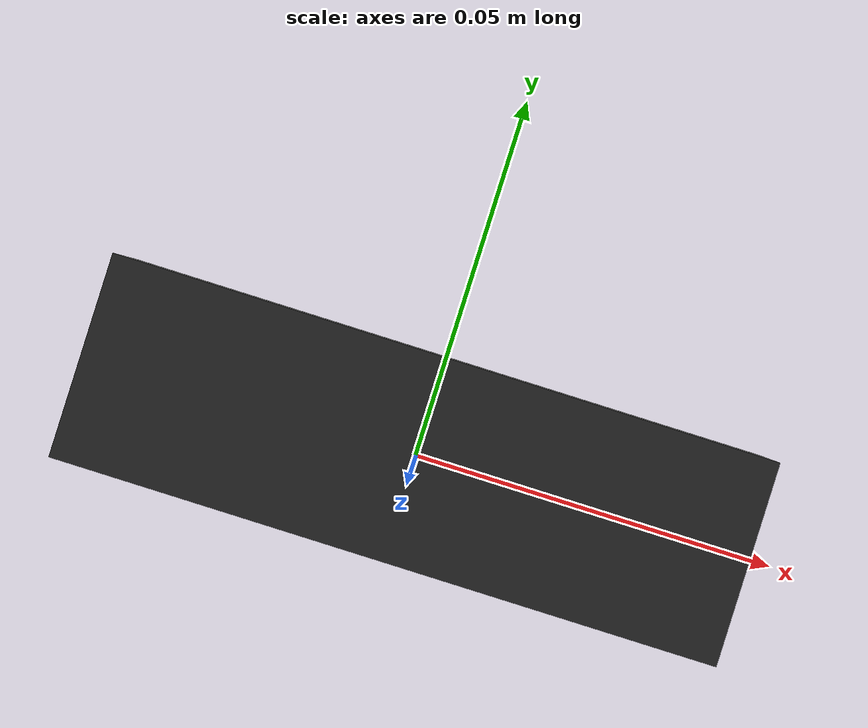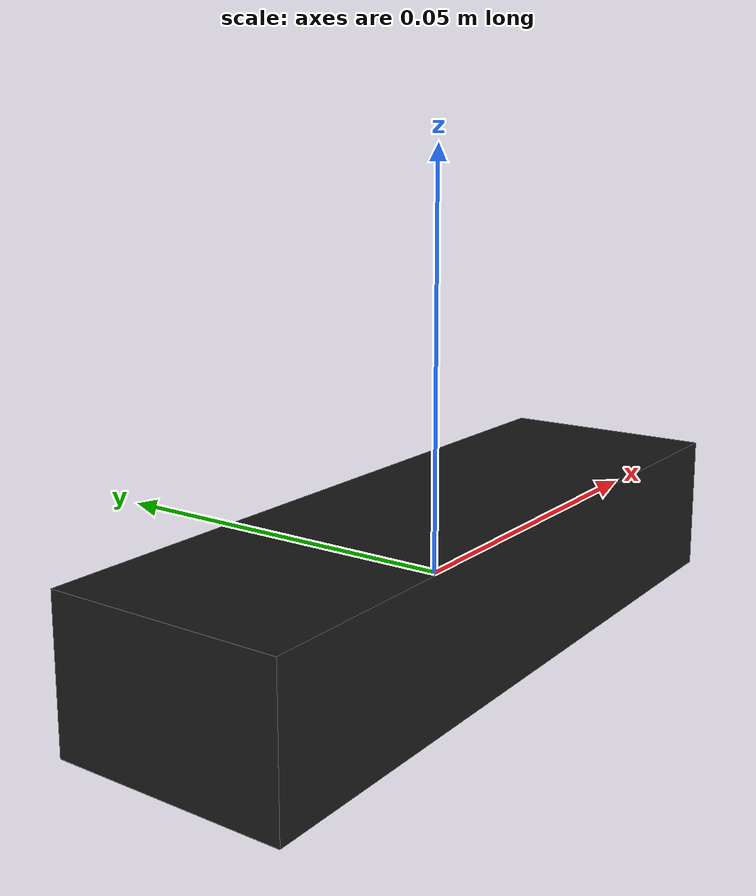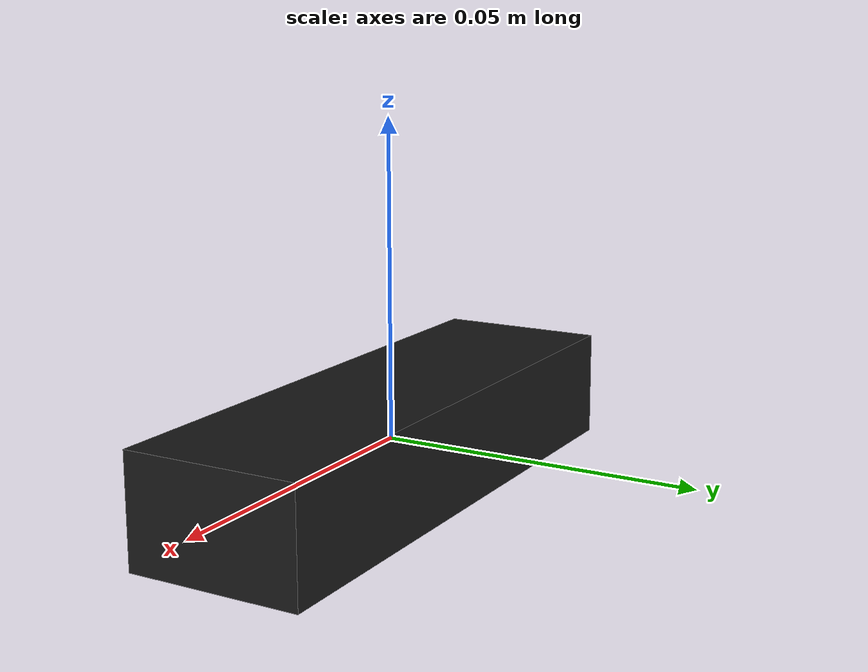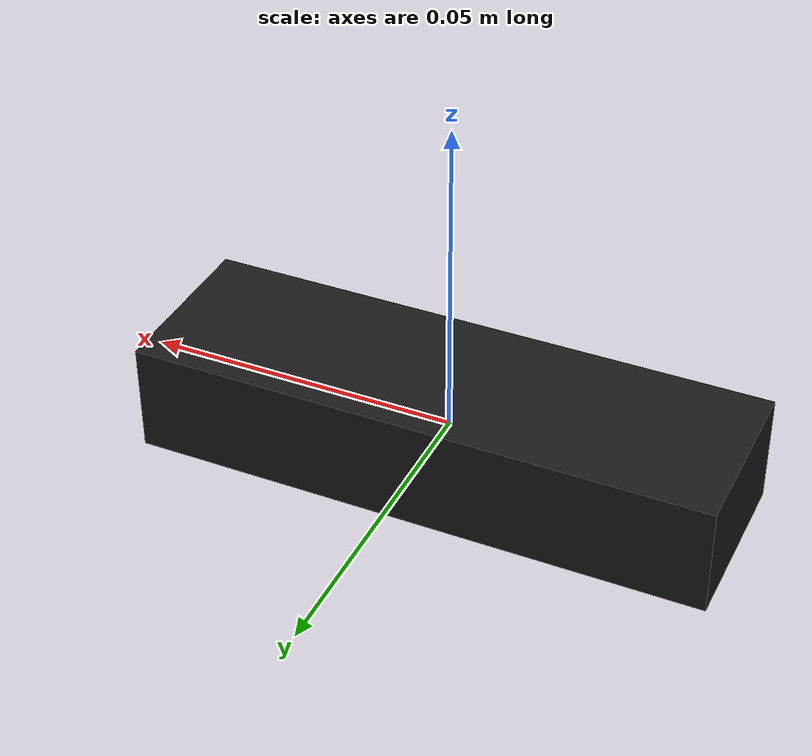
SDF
<?xml version="1.0"?>
<sdf version="1.9">
  <model name="oak_d_lite_mount">
    <link name="oak_d_lite_link">
      <inertial><mass>0.061</mass><inertia><ixx>0.0001</ixx><iyy>0.0001</iyy><izz>0.0001</izz></inertia></inertial>
      <visual name="oak_visual">
        <geometry><box><size>0.091 0.0278 0.0175</size></box></geometry>
        <material><diffuse>0.1 0.1 0.1 1</diffuse></material>
      </visual>
      <!-- OAK-D Lite sensors are defined via depthai_ros_driver, not here -->
    </link>
  </model>
</sdf>
